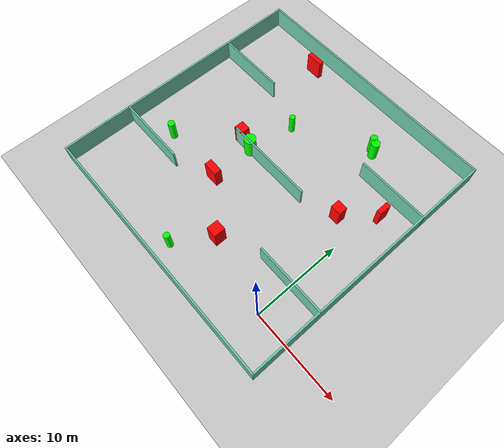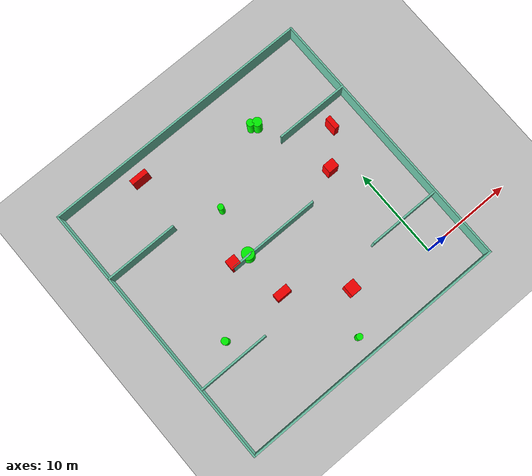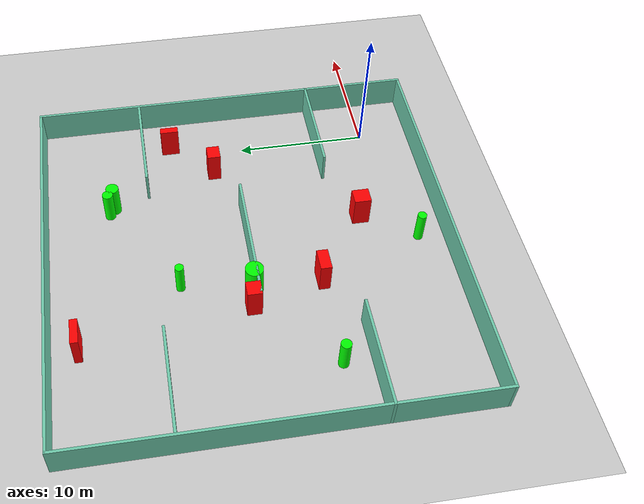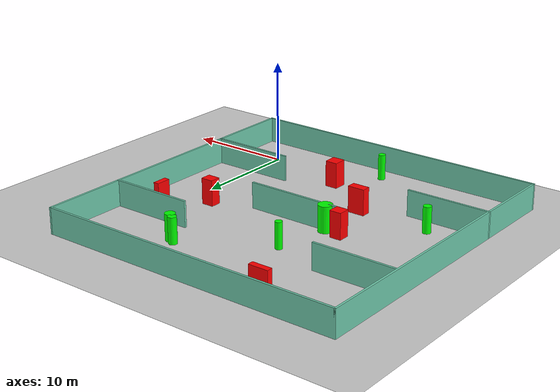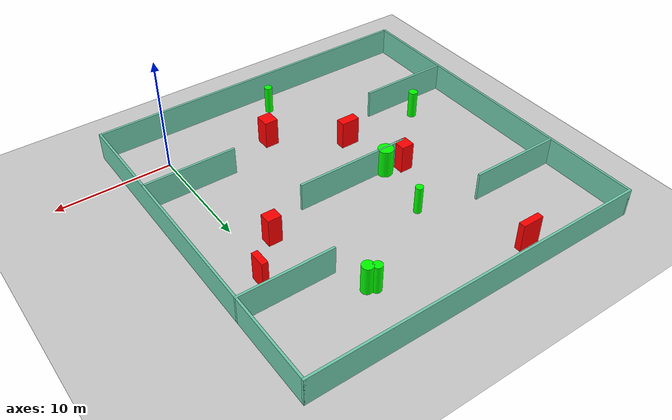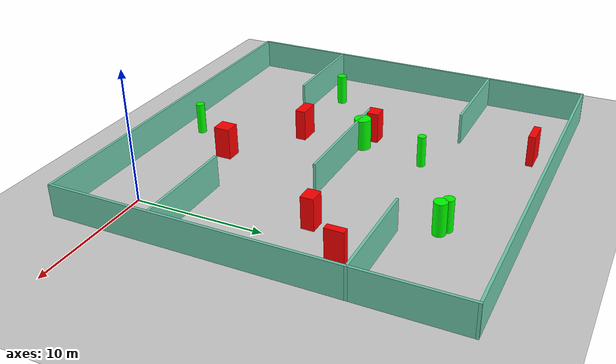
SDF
<sdf version="1.7">
 <world name="default">
  <light name="sun" type="directional">
   <pose>0 0 10 0 -0 0</pose>
   <diffuse>0.8 0.8 0.8 1</diffuse>
   <specular>0.2 0.2 0.2 1</specular>
   <attenuation>
    <range>1000</range>
    <constant>0.9</constant>
    <linear>0.01</linear>
    <quadratic>0.001</quadratic>
   </attenuation>
   <direction>-0.5 0.1 -0.9</direction>
   <spot><inner_angle>0</inner_angle><outer_angle>0</outer_angle><falloff>0</falloff></spot>
  </light>
  <model name="ground_plane">
   <static>1</static>
   <link name="link">
    <collision name="collision">
     <geometry><plane><normal>0 0 1</normal><size>100 100</size></plane></geometry>
     <surface>
      <contact><collide_bitmask>65535</collide_bitmask></contact>
      <friction><ode><mu>100</mu><mu2>50</mu2></ode></friction>
     </surface>
    </collision>
    <visual name="visual">
     <cast_shadows>0</cast_shadows>
     <geometry><plane><normal>0 0 1</normal><size>100 100</size></plane></geometry>
     <material>
      <script><uri>file://media/materials/scripts/gazebo.material</uri><name>Gazebo/Grey</name></script>
     </material>
    </visual>
   </link>
  </model>
  <gravity>0 0 -9.8</gravity>
  <magnetic_field>6e-06 2.3e-05 -4.2e-05</magnetic_field>
  <atmosphere type="adiabatic"/>
  <physics type="ode">
   <max_step_size>0.001</max_step_size>
   <real_time_factor>1</real_time_factor>
   <real_time_update_rate>1000</real_time_update_rate>
  </physics>
  <scene><ambient>0.4 0.4 0.4 1</ambient><background>0.7 0.7 0.7 1</background><shadows>1</shadows></scene>
  <spherical_coordinates>
   <surface_model>EARTH_WGS84</surface_model>
   <latitude_deg>0</latitude_deg>
   <longitude_deg>0</longitude_deg>
   <elevation>0</elevation>
   <heading_deg>0</heading_deg>
  </spherical_coordinates>
  <model name="my_base_walls">
   <link name="Wall_10">
    <collision name="Wall_10_Collision">
     <geometry><box><size>8.2 0.2 2.5</size></box></geometry>
     <pose>0 0 1.25 0 -0 0</pose>
    </collision>
    <visual name="Wall_10_Visual">
     <pose>0 0 1.25 0 -0 0</pose>
     <geometry><box><size>8.2 0.2 2.5</size></box></geometry>
     <material>
      <script><uri>file://media/materials/scripts/gazebo.material</uri><name>Gazebo/Grey</name></script>
      <ambient>0.435294 0.796078 0.67451 1</ambient>
     </material>
     <meta><layer>0</layer></meta>
    </visual>
    <pose>-11 -7 0 0 -0 0</pose>
   </link>
   <link name="Wall_12">
    <collision name="Wall_12_Collision">
     <geometry><box><size>8.2 0.2 2.5</size></box></geometry>
     <pose>0 0 1.25 0 -0 0</pose>
    </collision>
    <visual name="Wall_12_Visual">
     <pose>0 0 1.25 0 -0 0</pose>
     <geometry><box><size>8.2 0.2 2.5</size></box></geometry>
     <material>
      <script><uri>file://media/materials/scripts/gazebo.material</uri><name>Gazebo/Grey</name></script>
      <ambient>0.435294 0.796078 0.67451 1</ambient>
     </material>
     <meta><layer>0</layer></meta>
    </visual>
    <pose>-11 7 0 0 -0 0</pose>
   </link>
   <link name="Wall_14">
    <collision name="Wall_14_Collision">
     <geometry><box><size>8.2 0.2 2.5</size></box></geometry>
     <pose>0 0 1.25 0 -0 0</pose>
    </collision>
    <visual name="Wall_14_Visual">
     <pose>0 0 1.25 0 -0 0</pose>
     <geometry><box><size>8.2 0.2 2.5</size></box></geometry>
     <material>
      <script><uri>file://media/materials/scripts/gazebo.material</uri><name>Gazebo/Grey</name></script>
      <ambient>0.435294 0.796078 0.67451 1</ambient>
     </material>
     <meta><layer>0</layer></meta>
    </visual>
    <pose>11 7 0 0 -0 3.14159</pose>
   </link>
   <link name="Wall_16">
    <collision name="Wall_16_Collision">
     <geometry><box><size>10.2 0.2 2.5</size></box></geometry>
     <pose>0 0 1.25 0 -0 0</pose>
    </collision>
    <visual name="Wall_16_Visual">
     <pose>0 0 1.25 0 -0 0</pose>
     <geometry><box><size>10.2 0.2 2.5</size></box></geometry>
     <material>
      <script><uri>file://media/materials/scripts/gazebo.material</uri><name>Gazebo/Grey</name></script>
      <ambient>0.435294 0.796078 0.67451 1</ambient>
     </material>
     <meta><layer>0</layer></meta>
    </visual>
    <pose>0 0 0 0 -0 3.14159</pose>
   </link>
   <link name="Wall_2">
    <collision name="Wall_2_Collision">
     <geometry><box><size>30.2 0.2 2.5</size></box></geometry>
     <pose>0 0 1.25 0 -0 0</pose>
    </collision>
    <visual name="Wall_2_Visual">
     <pose>0 0 1.25 0 -0 0</pose>
     <geometry><box><size>30.2 0.2 2.5</size></box></geometry>
     <material>
      <script><uri>file://media/materials/scripts/gazebo.material</uri><name>Gazebo/Grey</name></script>
      <ambient>0.435294 0.796078 0.67451 1</ambient>
     </material>
     <meta><layer>0</layer></meta>
    </visual>
    <pose>0 -15 0 0 -0 3.14159</pose>
   </link>
   <link name="Wall_3">
    <collision name="Wall_3_Collision">
     <geometry><box><size>30.2 0.2 2.5</size></box></geometry>
     <pose>0 0 1.25 0 -0 0</pose>
    </collision>
    <visual name="Wall_3_Visual">
     <pose>0 0 1.25 0 -0 0</pose>
     <geometry><box><size>30.2 0.2 2.5</size></box></geometry>
     <material>
      <script><uri>file://media/materials/scripts/gazebo.material</uri><name>Gazebo/Grey</name></script>
      <ambient>0.435294 0.796078 0.67451 1</ambient>
     </material>
     <meta><layer>0</layer></meta>
    </visual>
    <pose>-15 0 0 0 -0 1.5708</pose>
   </link>
   <link name="Wall_4">
    <collision name="Wall_4_Collision">
     <geometry><box><size>30.2 0.2 2.5</size></box></geometry>
     <pose>0 0 1.25 0 -0 0</pose>
    </collision>
    <visual name="Wall_4_Visual">
     <pose>0 0 1.25 0 -0 0</pose>
     <geometry><box><size>30.2 0.2 2.5</size></box></geometry>
     <material>
      <script><uri>file://media/materials/scripts/gazebo.material</uri><name>Gazebo/Grey</name></script>
      <ambient>0.435294 0.796078 0.67451 1</ambient>
     </material>
     <meta><layer>0</layer></meta>
    </visual>
    <pose>0 15 0 0 -0 0</pose>
   </link>
   <link name="Wall_6">
    <collision name="Wall_6_Collision">
     <geometry><box><size>30.2 0.2 2.5</size></box></geometry>
     <pose>0 0 1.25 0 -0 0</pose>
    </collision>
    <visual name="Wall_6_Visual">
     <pose>0 0 1.25 0 -0 0</pose>
     <geometry><box><size>30.2 0.2 2.5</size></box></geometry>
     <material>
      <script><uri>file://media/materials/scripts/gazebo.material</uri><name>Gazebo/Grey</name></script>
      <ambient>0.435294 0.796078 0.67451 1</ambient>
     </material>
     <meta><layer>0</layer></meta>
    </visual>
    <pose>15 0 0 0 -0 1.5708</pose>
   </link>
   <link name="Wall_8">
    <collision name="Wall_8_Collision">
     <geometry><box><size>8.2 0.2 2.5</size></box></geometry>
     <pose>0 0 1.25 0 -0 0</pose>
    </collision>
    <visual name="Wall_8_Visual">
     <pose>0 0 1.25 0 -0 0</pose>
     <geometry><box><size>8.2 0.2 2.5</size></box></geometry>
     <material>
      <script><uri>file://media/materials/scripts/gazebo.material</uri><name>Gazebo/Grey</name></script>
      <ambient>0.435294 0.796078 0.67451 1</ambient>
     </material>
     <meta><layer>0</layer></meta>
    </visual>
    <pose>11 -7 0 0 -0 3.14159</pose>
   </link>
   <static>1</static>
   <pose>-11 11 0 0 -0 0</pose>
  </model>
  <model name="cylinder1">
   <static>1</static>
   <link name="link">
    <inertial>
     <mass>1</mass>
     <inertia><ixx>0.5</ixx><ixy>0</ixy><ixz>0</ixz><iyy>0.5</iyy><iyz>0</iyz><izz>1</izz></inertia>
    </inertial>
    <collision name="collision">
     <geometry><cylinder><radius>0.49162148691828117</radius><length>2.5</length></cylinder></geometry>
    </collision>
    <visual name="visual">
     <geometry><cylinder><radius>0.49162148691828117</radius><length>2.5</length></cylinder></geometry>
     <material>
      <ambient>0 1 0 1</ambient>
      <diffuse>0 1 0 1</diffuse>
      <specular>0.1 0.1 0.1 1</specular>
      <emissive>0 0 0 0</emissive>
     </material>
    </visual>
   </link>
   <pose>-4.9032934198118205 20.719424785718267 1.25 0 0 0</pose>
  </model>
  <model name="cylinder2">
   <static>1</static>
   <link name="link">
    <inertial>
     <mass>1</mass>
     <inertia><ixx>0.5</ixx><ixy>0</ixy><ixz>0</ixz><iyy>0.5</iyy><iyz>0</iyz><izz>1</izz></inertia>
    </inertial>
    <collision name="collision">
     <geometry><cylinder><radius>0.3989098792305672</radius><length>2.5</length></cylinder></geometry>
    </collision>
    <visual name="visual">
     <geometry><cylinder><radius>0.3989098792305672</radius><length>2.5</length></cylinder></geometry>
     <material>
      <ambient>0 1 0 1</ambient>
      <diffuse>0 1 0 1</diffuse>
      <specular>0.1 0.1 0.1 1</specular>
      <emissive>0 0 0 0</emissive>
     </material>
    </visual>
   </link>
   <pose>-5.492298099731956 21.09537299939736 1.25 0 0 0</pose>
  </model>
  <model name="cylinder3">
   <static>1</static>
   <link name="link">
    <inertial>
     <mass>1</mass>
     <inertia><ixx>0.5</ixx><ixy>0</ixy><ixz>0</ixz><iyy>0.5</iyy><iyz>0</iyz><izz>1</izz></inertia>
    </inertial>
    <collision name="collision">
     <geometry><cylinder><radius>0.34073267315352973</radius><length>2.5</length></cylinder></geometry>
    </collision>
    <visual name="visual">
     <geometry><cylinder><radius>0.34073267315352973</radius><length>2.5</length></cylinder></geometry>
     <material>
      <ambient>0 1 0 1</ambient>
      <diffuse>0 1 0 1</diffuse>
      <specular>0.1 0.1 0.1 1</specular>
      <emissive>0 0 0 0</emissive>
     </material>
    </visual>
   </link>
   <pose>-11.095835118044036 -1.9584533222215796 1.25 0 0 0</pose>
  </model>
  <model name="cylinder4">
   <static>1</static>
   <link name="link">
    <inertial>
     <mass>1</mass>
     <inertia><ixx>0.5</ixx><ixy>0</ixy><ixz>0</ixz><iyy>0.5</iyy><iyz>0</iyz><izz>1</izz></inertia>
    </inertial>
    <collision name="collision">
     <geometry><cylinder><radius>0.6701018762559016</radius><length>2.5</length></cylinder></geometry>
    </collision>
    <visual name="visual">
     <geometry><cylinder><radius>0.6701018762559016</radius><length>2.5</length></cylinder></geometry>
     <material>
      <ambient>0 1 0 1</ambient>
      <diffuse>0 1 0 1</diffuse>
      <specular>0.1 0.1 0.1 1</specular>
      <emissive>0 0 0 0</emissive>
     </material>
    </visual>
   </link>
   <pose>-14.10793675410441 11.173110840273534 1.25 0 0 0</pose>
  </model>
  <model name="cylinder5">
   <static>1</static>
   <link name="link">
    <inertial>
     <mass>1</mass>
     <inertia><ixx>0.5</ixx><ixy>0</ixy><ixz>0</ixz><iyy>0.5</iyy><iyz>0</iyz><izz>1</izz></inertia>
    </inertial>
    <collision name="collision">
     <geometry><cylinder><radius>0.32648536836205355</radius><length>2.5</length></cylinder></geometry>
    </collision>
    <visual name="visual">
     <geometry><cylinder><radius>0.32648536836205355</radius><length>2.5</length></cylinder></geometry>
     <material>
      <ambient>0 1 0 1</ambient>
      <diffuse>0 1 0 1</diffuse>
      <specular>0.1 0.1 0.1 1</specular>
      <emissive>0 0 0 0</emissive>
     </material>
    </visual>
   </link>
   <pose>-13.188317797634573 16.439829537335303 1.25 0 0 0</pose>
  </model>
  <model name="cylinder6">
   <static>1</static>
   <link name="link">
    <inertial>
     <mass>1</mass>
     <inertia><ixx>0.5</ixx><ixy>0</ixy><ixz>0</ixz><iyy>0.5</iyy><iyz>0</iyz><izz>1</izz></inertia>
    </inertial>
    <collision name="collision">
     <geometry><cylinder><radius>0.38821772053390974</radius><length>2.5</length></cylinder></geometry>
    </collision>
    <visual name="visual">
     <geometry><cylinder><radius>0.38821772053390974</radius><length>2.5</length></cylinder></geometry>
     <material>
      <ambient>0 1 0 1</ambient>
      <diffuse>0 1 0 1</diffuse>
      <specular>0.1 0.1 0.1 1</specular>
      <emissive>0 0 0 0</emissive>
     </material>
    </visual>
   </link>
   <pose>-21.221565987305354 6.10879044104764 1.25 0 0 0</pose>
  </model>
  <model name="box1">
   <static>1</static>
   <link name="link">
    <inertial>
     <mass>1</mass>
     <inertia><ixx>0.083</ixx><ixy>0</ixy><ixz>0</ixz><iyy>0.083</iyy><iyz>0</iyz><izz>0.083</izz></inertia>
    </inertial>
    <collision name="collision">
     <geometry><box><size>1.6647301925329132 0.8345904260498744 2.5</size></box></geometry>
    </collision>
    <visual name="visual">
     <geometry><box><size>1.6647301925329132 0.8345904260498744 2.5</size></box></geometry>
     <material>
      <ambient>1 0 0 1</ambient>
      <diffuse>1 0 0 1</diffuse>
      <specular>0.1 0.1 0.1 1</specular>
      <emissive>0 0 0 0</emissive>
     </material>
    </visual>
    <sensor name="my_contact" type="contact">
     <contact><collision>box_collision</collision><topic>__default_topic__</topic></contact>
    </sensor>
   </link>
   <pose>-14.027122861797176 6.102373802912387 1.25 0 0 0</pose>
  </model>
  <model name="box2">
   <static>1</static>
   <link name="link">
    <inertial>
     <mass>1</mass>
     <inertia><ixx>0.083</ixx><ixy>0</ixy><ixz>0</ixz><iyy>0.083</iyy><iyz>0</iyz><izz>0.083</izz></inertia>
    </inertial>
    <collision name="collision">
     <geometry><box><size>1.140009855707266 1.093822164811515 2.5</size></box></geometry>
    </collision>
    <visual name="visual">
     <geometry><box><size>1.140009855707266 1.093822164811515 2.5</size></box></geometry>
     <material>
      <ambient>1 0 0 1</ambient>
      <diffuse>1 0 0 1</diffuse>
      <specular>0.1 0.1 0.1 1</specular>
      <emissive>0 0 0 0</emissive>
     </material>
    </visual>
    <sensor name="my_contact" type="contact">
     <contact><collision>box_collision</collision><topic>__default_topic__</topic></contact>
    </sensor>
   </link>
   <pose>-15.754482811821925 11.459944850063733 1.25 0 0 0</pose>
  </model>
  <model name="box3">
   <static>1</static>
   <link name="link">
    <inertial>
     <mass>1</mass>
     <inertia><ixx>0.083</ixx><ixy>0</ixy><ixz>0</ixz><iyy>0.083</iyy><iyz>0</iyz><izz>0.083</izz></inertia>
    </inertial>
    <collision name="collision">
     <geometry><box><size>0.5427666834650162 1.411283625981669 2.5</size></box></geometry>
    </collision>
    <visual name="visual">
     <geometry><box><size>0.5427666834650162 1.411283625981669 2.5</size></box></geometry>
     <material>
      <ambient>1 0 0 1</ambient>
      <diffuse>1 0 0 1</diffuse>
      <specular>0.1 0.1 0.1 1</specular>
      <emissive>0 0 0 0</emissive>
     </material>
    </visual>
    <sensor name="my_contact" type="contact">
     <contact><collision>box_collision</collision><topic>__default_topic__</topic></contact>
    </sensor>
   </link>
   <pose>0.7839802300025518 15.807458599704002 1.25 0 0 0</pose>
  </model>
  <model name="box4">
   <static>1</static>
   <link name="link">
    <inertial>
     <mass>1</mass>
     <inertia><ixx>0.083</ixx><ixy>0</ixy><ixz>0</ixz><iyy>0.083</iyy><iyz>0</iyz><izz>0.083</izz></inertia>
    </inertial>
    <collision name="collision">
     <geometry><box><size>1.1883155377574042 0.999090659145699 2.5</size></box></geometry>
    </collision>
    <visual name="visual">
     <geometry><box><size>1.1883155377574042 0.999090659145699 2.5</size></box></geometry>
     <material>
      <ambient>1 0 0 1</ambient>
      <diffuse>1 0 0 1</diffuse>
      <specular>0.1 0.1 0.1 1</specular>
      <emissive>0 0 0 0</emissive>
     </material>
    </visual>
    <sensor name="my_contact" type="contact">
     <contact><collision>box_collision</collision><topic>__default_topic__</topic></contact>
    </sensor>
   </link>
   <pose>-2.211115734614207 12.58384727944727 1.25 0 0 0</pose>
  </model>
  <model name="box5">
   <static>1</static>
   <link name="link">
    <inertial>
     <mass>1</mass>
     <inertia><ixx>0.083</ixx><ixy>0</ixy><ixz>0</ixz><iyy>0.083</iyy><iyz>0</iyz><izz>0.083</izz></inertia>
    </inertial>
    <collision name="collision">
     <geometry><box><size>1.9257918381694668 0.5531446282872396 2.5</size></box></geometry>
    </collision>
    <visual name="visual">
     <geometry><box><size>1.9257918381694668 0.5531446282872396 2.5</size></box></geometry>
     <material>
      <ambient>1 0 0 1</ambient>
      <diffuse>1 0 0 1</diffuse>
      <specular>0.1 0.1 0.1 1</specular>
      <emissive>0 0 0 0</emissive>
     </material>
    </visual>
    <sensor name="my_contact" type="contact">
     <contact><collision>box_collision</collision><topic>__default_topic__</topic></contact>
    </sensor>
   </link>
   <pose>-17.419757170381516 24.003981559278735 1.25 0 0 0</pose>
  </model>
  <model name="box6">
   <static>1</static>
   <link name="link">
    <inertial>
     <mass>1</mass>
     <inertia><ixx>0.083</ixx><ixy>0</ixy><ixz>0</ixz><iyy>0.083</iyy><iyz>0</iyz><izz>0.083</izz></inertia>
    </inertial>
    <collision name="collision">
     <geometry><box><size>1.2105938556947802 1.2766691773162988 2.5</size></box></geometry>
    </collision>
    <visual name="visual">
     <geometry><box><size>1.2105938556947802 1.2766691773162988 2.5</size></box></geometry>
     <material>
      <ambient>1 0 0 1</ambient>
      <diffuse>1 0 0 1</diffuse>
      <specular>0.1 0.1 0.1 1</specular>
      <emissive>0 0 0 0</emissive>
     </material>
    </visual>
    <sensor name="my_contact" type="contact">
     <contact><collision>box_collision</collision><topic>__default_topic__</topic></contact>
    </sensor>
   </link>
   <pose>-8.50204137983553 2.0568094393470844 1.25 0 0 0</pose>
  </model>
 </world>
</sdf>
